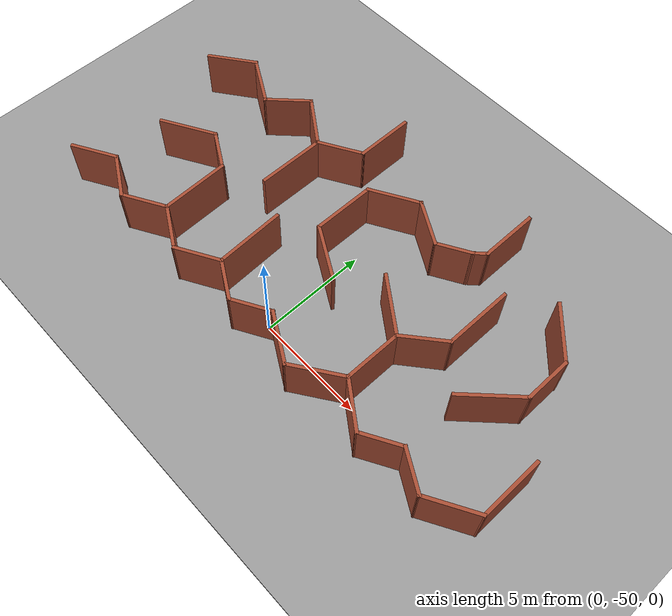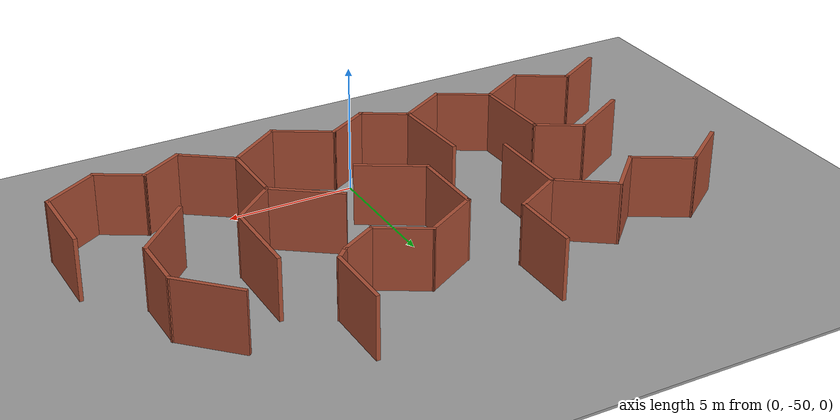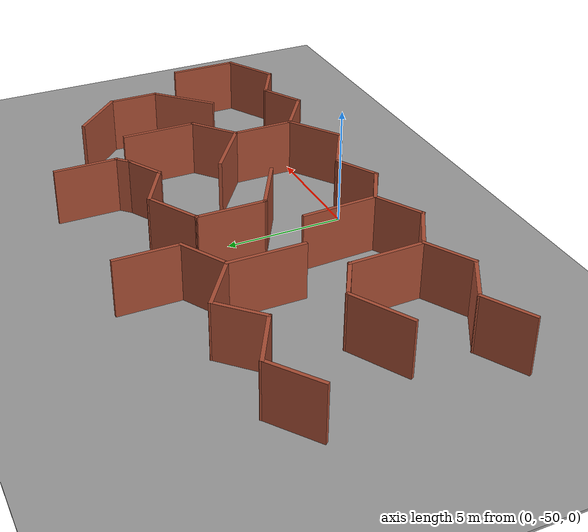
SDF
<sdf version="1.6">
 <world name="default">
  <model name="maze_rect_3">
   <pose>4e-06 -9.9e-05 0 0 -0 1.57001</pose>
   <link name="Wall_29">
    <collision name="Wall_29_Collision">
     <geometry><box><size>2.5 0.15 2.5</size></box></geometry>
     <pose>0 0 1.25 0 -0 0</pose>
    </collision>
    <visual name="Wall_29_Visual">
     <pose>0 0 1.25 0 -0 0</pose>
     <geometry><box><size>2.5 0.15 2.5</size></box></geometry>
     <material>
      <script><uri>file://media/materials/scripts/gazebo.material</uri><name>Gazebo/Bricks</name></script>
      <ambient>1 1 1 1</ambient>
     </material>
     <meta><layer>0</layer></meta>
    </visual>
    <pose>-50.6318 -10.7188 0 0 -0 2.0944</pose>
   </link>
   <link name="Wall_30">
    <collision name="Wall_30_Collision">
     <geometry><box><size>2 0.15 2.5</size></box></geometry>
     <pose>0 0 1.25 0 -0 0</pose>
    </collision>
    <visual name="Wall_30_Visual">
     <pose>0 0 1.25 0 -0 0</pose>
     <geometry><box><size>2 0.15 2.5</size></box></geometry>
     <material>
      <script><uri>file://media/materials/scripts/gazebo.material</uri><name>Gazebo/Bricks</name></script>
      <ambient>1 1 1 1</ambient>
     </material>
     <meta><layer>0</layer></meta>
    </visual>
    <pose>-50.7568 -8.90015 0 0 -0 1.0472</pose>
   </link>
   <link name="Wall_31">
    <collision name="Wall_31_Collision">
     <geometry><box><size>2 0.15 2.5</size></box></geometry>
     <pose>0 0 1.25 0 -0 0</pose>
    </collision>
    <visual name="Wall_31_Visual">
     <pose>0 0 1.25 0 -0 0</pose>
     <geometry><box><size>2 0.15 2.5</size></box></geometry>
     <material>
      <script><uri>file://media/materials/scripts/gazebo.material</uri><name>Gazebo/Bricks</name></script>
      <ambient>1 1 1 1</ambient>
     </material>
     <meta><layer>0</layer></meta>
    </visual>
    <pose>-50.7568 -7.298 0 0 -0 2.0944</pose>
   </link>
   <link name="Wall_32">
    <collision name="Wall_32_Collision">
     <geometry><box><size>2.38551 0.15 2.5</size></box></geometry>
     <pose>0 0 1.25 0 -0 0</pose>
    </collision>
    <visual name="Wall_32_Visual">
     <pose>0 0 1.25 0 -0 0</pose>
     <geometry><box><size>2.38551 0.15 2.5</size></box></geometry>
     <material>
      <script><uri>file://media/materials/scripts/gazebo.material</uri><name>Gazebo/Bricks</name></script>
      <ambient>1 1 1 1</ambient>
     </material>
     <meta><layer>0</layer></meta>
    </visual>
    <pose>-50.5693 -5.5876 0 0 -0 0.950197</pose>
   </link>
   <link name="Wall_33">
    <collision name="Wall_33_Collision">
     <geometry><box><size>2.63445 0.15 2.5</size></box></geometry>
     <pose>0 0 1.25 0 -0 0</pose>
    </collision>
    <visual name="Wall_33_Visual">
     <pose>0 0 1.25 0 -0 0</pose>
     <geometry><box><size>2.63445 0.15 2.5</size></box></geometry>
     <material>
      <script><uri>file://media/materials/scripts/gazebo.material</uri><name>Gazebo/Bricks</name></script>
      <ambient>1 1 1 1</ambient>
     </material>
     <meta><layer>0</layer></meta>
    </visual>
    <pose>-50.6318 -3.6607 0 0 -0 2.18165</pose>
   </link>
   <link name="Wall_34">
    <collision name="Wall_34_Collision">
     <geometry><box><size>2.5 0.15 2.5</size></box></geometry>
     <pose>0 0 1.25 0 -0 0</pose>
    </collision>
    <visual name="Wall_34_Visual">
     <pose>0 0 1.25 0 -0 0</pose>
     <geometry><box><size>2.5 0.15 2.5</size></box></geometry>
     <material>
      <script><uri>file://media/materials/scripts/gazebo.material</uri><name>Gazebo/Bricks</name></script>
      <ambient>1 1 1 1</ambient>
     </material>
     <meta><layer>0</layer></meta>
    </visual>
    <pose>-50.7568 -1.62553 0 0 -0 1.0472</pose>
   </link>
   <link name="Wall_35">
    <collision name="Wall_35_Collision">
     <geometry><box><size>2 0.15 2.5</size></box></geometry>
     <pose>0 0 1.25 0 -0 0</pose>
    </collision>
    <visual name="Wall_35_Visual">
     <pose>0 0 1.25 0 -0 0</pose>
     <geometry><box><size>2 0.15 2.5</size></box></geometry>
     <material>
      <script><uri>file://media/materials/scripts/gazebo.material</uri><name>Gazebo/Bricks</name></script>
      <ambient>1 1 1 1</ambient>
     </material>
     <meta><layer>0</layer></meta>
    </visual>
    <pose>-50.6318 0.193118 0 0 -0 2.0944</pose>
   </link>
   <link name="Wall_36">
    <collision name="Wall_36_Collision">
     <geometry><box><size>2 0.15 2.5</size></box></geometry>
     <pose>0 0 1.25 0 -0 0</pose>
    </collision>
    <visual name="Wall_36_Visual">
     <pose>0 0 1.25 0 -0 0</pose>
     <geometry><box><size>2 0.15 2.5</size></box></geometry>
     <material>
      <script><uri>file://media/materials/scripts/gazebo.material</uri><name>Gazebo/Bricks</name></script>
      <ambient>1 1 1 1</ambient>
     </material>
     <meta><layer>0</layer></meta>
    </visual>
    <pose>-50.6318 1.79527 0 0 -0 1.0472</pose>
   </link>
   <link name="Wall_37">
    <collision name="Wall_37_Collision">
     <geometry><box><size>2.25 0.15 2.5</size></box></geometry>
     <pose>0 0 1.25 0 -0 0</pose>
    </collision>
    <visual name="Wall_37_Visual">
     <pose>0 0 1.25 0 -0 0</pose>
     <geometry><box><size>2.25 0.15 2.5</size></box></geometry>
     <material>
      <script><uri>file://media/materials/scripts/gazebo.material</uri><name>Gazebo/Bricks</name></script>
      <ambient>1 1 1 1</ambient>
     </material>
     <meta><layer>0</layer></meta>
    </visual>
    <pose>-50.6943 3.50567 0 0 -0 2.0944</pose>
   </link>
   <link name="Wall_38">
    <collision name="Wall_38_Collision">
     <geometry><box><size>2.25 0.15 2.5</size></box></geometry>
     <pose>0 0 1.25 0 -0 0</pose>
    </collision>
    <visual name="Wall_38_Visual">
     <pose>0 0 1.25 0 -0 0</pose>
     <geometry><box><size>2.25 0.15 2.5</size></box></geometry>
     <material>
      <script><uri>file://media/materials/scripts/gazebo.material</uri><name>Gazebo/Bricks</name></script>
      <ambient>1 1 1 1</ambient>
     </material>
     <meta><layer>0</layer></meta>
    </visual>
    <pose>-50.6943 5.32432 0 0 -0 1.0472</pose>
   </link>
   <link name="Wall_39">
    <collision name="Wall_39_Collision">
     <geometry><box><size>2.25 0.15 2.5</size></box></geometry>
     <pose>0 0 1.25 0 -0 0</pose>
    </collision>
    <visual name="Wall_39_Visual">
     <pose>0 0 1.25 0 -0 0</pose>
     <geometry><box><size>2.25 0.15 2.5</size></box></geometry>
     <material>
      <script><uri>file://media/materials/scripts/gazebo.material</uri><name>Gazebo/Bricks</name></script>
      <ambient>1 1 1 1</ambient>
     </material>
     <meta><layer>0</layer></meta>
    </visual>
    <pose>-50.6943 7.14297 0 0 -0 2.0944</pose>
   </link>
   <link name="Wall_40">
    <collision name="Wall_40_Collision">
     <geometry><box><size>2.25 0.15 2.5</size></box></geometry>
     <pose>0 0 1.25 0 -0 0</pose>
    </collision>
    <visual name="Wall_40_Visual">
     <pose>0 0 1.25 0 -0 0</pose>
     <geometry><box><size>2.25 0.15 2.5</size></box></geometry>
     <material>
      <script><uri>file://media/materials/scripts/gazebo.material</uri><name>Gazebo/Bricks</name></script>
      <ambient>1 1 1 1</ambient>
     </material>
     <meta><layer>0</layer></meta>
    </visual>
    <pose>-50.6943 8.96163 0 0 -0 1.0472</pose>
   </link>
   <link name="Wall_41">
    <collision name="Wall_41_Collision">
     <geometry><box><size>2.25 0.15 2.5</size></box></geometry>
     <pose>0 0 1.25 0 -0 0</pose>
    </collision>
    <visual name="Wall_41_Visual">
     <pose>0 0 1.25 0 -0 0</pose>
     <geometry><box><size>2.25 0.15 2.5</size></box></geometry>
     <material>
      <script><uri>file://media/materials/scripts/gazebo.material</uri><name>Gazebo/Bricks</name></script>
      <ambient>1 1 1 1</ambient>
     </material>
     <meta><layer>0</layer></meta>
    </visual>
    <pose>-50.6943 10.7803 0 0 -0 2.0944</pose>
   </link>
   <link name="Wall_559">
    <collision name="Wall_559_Collision">
     <geometry><box><size>3 0.15 2.5</size></box></geometry>
     <pose>0 0 1.25 0 -0 0</pose>
    </collision>
    <visual name="Wall_559_Visual">
     <pose>0 0 1.25 0 -0 0</pose>
     <geometry><box><size>3 0.15 2.5</size></box></geometry>
     <material>
      <script><uri>file://media/materials/scripts/gazebo.material</uri><name>Gazebo/Bricks</name></script>
      <ambient>1 1 1 1</ambient>
     </material>
     <meta><layer>0</layer></meta>
    </visual>
    <pose>-46.485 -8.87773 0 0 -0 -0.785398</pose>
   </link>
   <link name="Wall_560">
    <collision name="Wall_560_Collision">
     <geometry><box><size>2.25 0.15 2.5</size></box></geometry>
     <pose>0 0 1.25 0 -0 0</pose>
    </collision>
    <visual name="Wall_560_Visual">
     <pose>0 0 1.25 0 -0 0</pose>
     <geometry><box><size>2.25 0.15 2.5</size></box></geometry>
     <material>
      <script><uri>file://media/materials/scripts/gazebo.material</uri><name>Gazebo/Bricks</name></script>
      <ambient>1 1 1 1</ambient>
     </material>
     <meta><layer>0</layer></meta>
    </visual>
    <pose>-44.4273 -9.88536 0 0 -0 0</pose>
   </link>
   <link name="Wall_561">
    <collision name="Wall_561_Collision">
     <geometry><box><size>2.75 0.15 2.5</size></box></geometry>
     <pose>0 0 1.25 0 -0 0</pose>
    </collision>
    <visual name="Wall_561_Visual">
     <pose>0 0 1.25 0 -0 0</pose>
     <geometry><box><size>2.75 0.15 2.5</size></box></geometry>
     <material>
      <script><uri>file://media/materials/scripts/gazebo.material</uri><name>Gazebo/Bricks</name></script>
      <ambient>1 1 1 1</ambient>
     </material>
     <meta><layer>0</layer></meta>
    </visual>
    <pose>-42.4581 -8.96612 0 0 -0 0.785398</pose>
   </link>
   <link name="Wall_568">
    <collision name="Wall_568_Collision">
     <geometry><box><size>2.75 0.15 2.5</size></box></geometry>
     <pose>0 0 1.25 0 -0 0</pose>
    </collision>
    <visual name="Wall_568_Visual">
     <pose>0 0 1.25 0 -0 0</pose>
     <geometry><box><size>2.75 0.15 2.5</size></box></geometry>
     <material>
      <script><uri>file://media/materials/scripts/gazebo.material</uri><name>Gazebo/Bricks</name></script>
      <ambient>1 1 1 1</ambient>
     </material>
     <meta><layer>0</layer></meta>
    </visual>
    <pose>-46.752 -0.005721 0 0 -0 1.0472</pose>
   </link>
   <link name="Wall_569">
    <collision name="Wall_569_Collision">
     <geometry><box><size>3 0.15 2.5</size></box></geometry>
     <pose>0 0 1.25 0 -0 0</pose>
    </collision>
    <visual name="Wall_569_Visual">
     <pose>0 0 1.25 0 -0 0</pose>
     <geometry><box><size>3 0.15 2.5</size></box></geometry>
     <material>
      <script><uri>file://media/materials/scripts/gazebo.material</uri><name>Gazebo/Bricks</name></script>
      <ambient>1 1 1 1</ambient>
     </material>
     <meta><layer>0</layer></meta>
    </visual>
    <pose>-44.677 1.12011 0 0 -0 0</pose>
   </link>
   <link name="Wall_570">
    <collision name="Wall_570_Collision">
     <geometry><box><size>2.5 0.15 2.5</size></box></geometry>
     <pose>0 0 1.25 0 -0 0</pose>
    </collision>
    <visual name="Wall_570_Visual">
     <pose>0 0 1.25 0 -0 0</pose>
     <geometry><box><size>2.5 0.15 2.5</size></box></geometry>
     <material>
      <script><uri>file://media/materials/scripts/gazebo.material</uri><name>Gazebo/Bricks</name></script>
      <ambient>1 1 1 1</ambient>
     </material>
     <meta><layer>0</layer></meta>
    </visual>
    <pose>-42.6645 0.102532 0 0 -0 -1.0472</pose>
   </link>
   <link name="Wall_571">
    <collision name="Wall_571_Collision">
     <geometry><box><size>2.25 0.15 2.5</size></box></geometry>
     <pose>0 0 1.25 0 -0 0</pose>
    </collision>
    <visual name="Wall_571_Visual">
     <pose>0 0 1.25 0 -0 0</pose>
     <geometry><box><size>2.25 0.15 2.5</size></box></geometry>
     <material>
      <script><uri>file://media/materials/scripts/gazebo.material</uri><name>Gazebo/Bricks</name></script>
      <ambient>1 1 1 1</ambient>
     </material>
     <meta><layer>0</layer></meta>
    </visual>
    <pose>-42.602 -1.82437 0 0 -0 -2.0944</pose>
   </link>
   <link name="Wall_572">
    <collision name="Wall_572_Collision">
     <geometry><box><size>1.75 0.15 2.5</size></box></geometry>
     <pose>0 0 1.25 0 -0 0</pose>
    </collision>
    <visual name="Wall_572_Visual">
     <pose>0 0 1.25 0 -0 0</pose>
     <geometry><box><size>1.75 0.15 2.5</size></box></geometry>
     <material>
      <script><uri>file://media/materials/scripts/gazebo.material</uri><name>Gazebo/Bricks</name></script>
      <ambient>1 1 1 1</ambient>
     </material>
     <meta><layer>0</layer></meta>
    </visual>
    <pose>-42.727 -3.42652 0 0 -0 -1.0472</pose>
   </link>
   <link name="Wall_573">
    <collision name="Wall_573_Collision">
     <geometry><box><size>0.75 0.15 2.5</size></box></geometry>
     <pose>0 0 1.25 0 -0 0</pose>
    </collision>
    <visual name="Wall_573_Visual">
     <pose>0 0 1.25 0 -0 0</pose>
     <geometry><box><size>0.75 0.15 2.5</size></box></geometry>
     <material>
      <script><uri>file://media/materials/scripts/gazebo.material</uri><name>Gazebo/Bricks</name></script>
      <ambient>1 1 1 1</ambient>
     </material>
     <meta><layer>0</layer></meta>
    </visual>
    <pose>-42.1148 -4.33147 0 0 -0 -0.785398</pose>
   </link>
   <link name="Wall_574">
    <collision name="Wall_574_Collision">
     <geometry><box><size>2.75 0.15 2.5</size></box></geometry>
     <pose>0 0 1.25 0 -0 0</pose>
    </collision>
    <visual name="Wall_574_Visual">
     <pose>0 0 1.25 0 -0 0</pose>
     <geometry><box><size>2.75 0.15 2.5</size></box></geometry>
     <material>
      <script><uri>file://media/materials/scripts/gazebo.material</uri><name>Gazebo/Bricks</name></script>
      <ambient>1 1 1 1</ambient>
     </material>
     <meta><layer>0</layer></meta>
    </visual>
    <pose>-40.6027 -4.54361 0 0 -0 0</pose>
   </link>
   <link name="Wall_578">
    <collision name="Wall_578_Collision">
     <geometry><box><size>3.25 0.15 2.5</size></box></geometry>
     <pose>0 0 1.25 0 -0 0</pose>
    </collision>
    <visual name="Wall_578_Visual">
     <pose>0 0 1.25 0 -0 0</pose>
     <geometry><box><size>3.25 0.15 2.5</size></box></geometry>
     <material>
      <script><uri>file://media/materials/scripts/gazebo.material</uri><name>Gazebo/Bricks</name></script>
      <ambient>1 1 1 1</ambient>
     </material>
     <meta><layer>0</layer></meta>
    </visual>
    <pose>-44.4008 -6.3002 0 0 -0 3.14159</pose>
   </link>
   <link name="Wall_579">
    <collision name="Wall_579_Collision">
     <geometry><box><size>2.27211 0.15 2.5</size></box></geometry>
     <pose>0 0 1.25 0 -0 0</pose>
    </collision>
    <visual name="Wall_579_Visual">
     <pose>0 0 1.25 0 -0 0</pose>
     <geometry><box><size>2.27211 0.15 2.5</size></box></geometry>
     <material>
      <script><uri>file://media/materials/scripts/gazebo.material</uri><name>Gazebo/Bricks</name></script>
      <ambient>1 1 1 1</ambient>
     </material>
     <meta><layer>0</layer></meta>
    </visual>
    <pose>-46.635 -5.48924 0 0 -0 2.27164</pose>
   </link>
   <link name="Wall_580">
    <collision name="Wall_580_Collision">
     <geometry><box><size>2.75 0.15 2.5</size></box></geometry>
     <pose>0 0 1.25 0 -0 0</pose>
    </collision>
    <visual name="Wall_580_Visual">
     <pose>0 0 1.25 0 -0 0</pose>
     <geometry><box><size>2.75 0.15 2.5</size></box></geometry>
     <material>
      <script><uri>file://media/materials/scripts/gazebo.material</uri><name>Gazebo/Bricks</name></script>
      <ambient>1 1 1 1</ambient>
     </material>
     <meta><layer>0</layer></meta>
    </visual>
    <pose>-48.6193 -4.67828 0 0 -0 3.14159</pose>
   </link>
   <link name="Wall_582">
    <collision name="Wall_582_Collision">
     <geometry><box><size>2.91824 0.15 2.5</size></box></geometry>
     <pose>0 0 1.25 0 -0 0</pose>
    </collision>
    <visual name="Wall_582_Visual">
     <pose>0 0 1.25 0 -0 0</pose>
     <geometry><box><size>2.91824 0.15 2.5</size></box></geometry>
     <material>
      <script><uri>file://media/materials/scripts/gazebo.material</uri><name>Gazebo/Bricks</name></script>
      <ambient>1 1 1 1</ambient>
     </material>
     <meta><layer>0</layer></meta>
    </visual>
    <pose>-46.5071 -3.55749 0 0 -0 -2.19787</pose>
   </link>
   <link name="Wall_588">
    <collision name="Wall_588_Collision">
     <geometry><box><size>3 0.15 2.5</size></box></geometry>
     <pose>0 0 1.25 0 -0 0</pose>
    </collision>
    <visual name="Wall_588_Visual">
     <pose>0 0 1.25 0 -0 0</pose>
     <geometry><box><size>3 0.15 2.5</size></box></geometry>
     <material>
      <script><uri>file://media/materials/scripts/gazebo.material</uri><name>Gazebo/Bricks</name></script>
      <ambient>1 1 1 1</ambient>
     </material>
     <meta><layer>0</layer></meta>
    </visual>
    <pose>-48.6193 -11.7364 0 0 -0 3.14159</pose>
   </link>
   <link name="Wall_595">
    <collision name="Wall_595_Collision">
     <geometry><box><size>3.29802 0.15 2.5</size></box></geometry>
     <pose>0 0 1.25 0 -0 0</pose>
    </collision>
    <visual name="Wall_595_Visual">
     <pose>0 0 1.25 0 -0 0</pose>
     <geometry><box><size>3.29802 0.15 2.5</size></box></geometry>
     <material>
      <script><uri>file://media/materials/scripts/gazebo.material</uri><name>Gazebo/Bricks</name></script>
      <ambient>1 1 1 1</ambient>
     </material>
     <meta><layer>0</layer></meta>
    </visual>
    <pose>-48.5968 2.66538 0 0 -0 -3.09771</pose>
   </link>
   <link name="Wall_597">
    <collision name="Wall_597_Collision">
     <geometry><box><size>2.75 0.15 2.5</size></box></geometry>
     <pose>0 0 1.25 0 -0 0</pose>
    </collision>
    <visual name="Wall_597_Visual">
     <pose>0 0 1.25 0 -0 0</pose>
     <geometry><box><size>2.75 0.15 2.5</size></box></geometry>
     <material>
      <script><uri>file://media/materials/scripts/gazebo.material</uri><name>Gazebo/Bricks</name></script>
      <ambient>1 1 1 1</ambient>
     </material>
     <meta><layer>0</layer></meta>
    </visual>
    <pose>-46.7977 9.04905 0 0 -0 -1.0472</pose>
   </link>
   <link name="Wall_598">
    <collision name="Wall_598_Collision">
     <geometry><box><size>2 0.15 2.5</size></box></geometry>
     <pose>0 0 1.25 0 -0 0</pose>
    </collision>
    <visual name="Wall_598_Visual">
     <pose>0 0 1.25 0 -0 0</pose>
     <geometry><box><size>2 0.15 2.5</size></box></geometry>
     <material>
      <script><uri>file://media/materials/scripts/gazebo.material</uri><name>Gazebo/Bricks</name></script>
      <ambient>1 1 1 1</ambient>
     </material>
     <meta><layer>0</layer></meta>
    </visual>
    <pose>-46.6102 7.12214 0 0 -0 -2.0944</pose>
   </link>
   <link name="Wall_599">
    <collision name="Wall_599_Collision">
     <geometry><box><size>3.24778 0.15 2.5</size></box></geometry>
     <pose>0 0 1.25 0 -0 0</pose>
    </collision>
    <visual name="Wall_599_Visual">
     <pose>0 0 1.25 0 -0 0</pose>
     <geometry><box><size>3.24778 0.15 2.5</size></box></geometry>
     <material>
      <script><uri>file://media/materials/scripts/gazebo.material</uri><name>Gazebo/Bricks</name></script>
      <ambient>1 1 1 1</ambient>
     </material>
     <meta><layer>0</layer></meta>
    </visual>
    <pose>-48.621 6.27736 0 0 -0 -3.11337</pose>
   </link>
   <link name="Wall_639">
    <collision name="Wall_639_Collision">
     <geometry><box><size>3.25 0.15 2.5</size></box></geometry>
     <pose>0 0 1.25 0 -0 0</pose>
    </collision>
    <visual name="Wall_639_Visual">
     <pose>0 0 1.25 0 -0 0</pose>
     <geometry><box><size>3.25 0.15 2.5</size></box></geometry>
     <material>
      <script><uri>file://media/materials/scripts/gazebo.material</uri><name>Gazebo/Bricks</name></script>
      <ambient>1 1 1 1</ambient>
     </material>
     <meta><layer>0</layer></meta>
    </visual>
    <pose>-44.6499 4.48459 0 0 -0 0</pose>
   </link>
   <link name="Wall_640">
    <collision name="Wall_640_Collision">
     <geometry><box><size>2.25 0.15 2.5</size></box></geometry>
     <pose>0 0 1.25 0 -0 0</pose>
    </collision>
    <visual name="Wall_640_Visual">
     <pose>0 0 1.25 0 -0 0</pose>
     <geometry><box><size>2.25 0.15 2.5</size></box></geometry>
     <material>
      <script><uri>file://media/materials/scripts/gazebo.material</uri><name>Gazebo/Bricks</name></script>
      <ambient>1 1 1 1</ambient>
     </material>
     <meta><layer>0</layer></meta>
    </visual>
    <pose>-42.5749 3.57526 0 0 -0 -1.0472</pose>
   </link>
   <link name="Wall_641">
    <collision name="Wall_641_Collision">
     <geometry><box><size>2.75 0.15 2.5</size></box></geometry>
     <pose>0 0 1.25 0 -0 0</pose>
    </collision>
    <visual name="Wall_641_Visual">
     <pose>0 0 1.25 0 -0 0</pose>
     <geometry><box><size>2.75 0.15 2.5</size></box></geometry>
     <material>
      <script><uri>file://media/materials/scripts/gazebo.material</uri><name>Gazebo/Bricks</name></script>
      <ambient>1 1 1 1</ambient>
     </material>
     <meta><layer>0</layer></meta>
    </visual>
    <pose>-40.7499 2.66594 0 0 -0 0</pose>
   </link>
   <link name="Wall_656">
    <collision name="Wall_656_Collision">
     <geometry><box><size>2.41594 0.15 2.5</size></box></geometry>
     <pose>0 0 1.25 0 -0 0</pose>
    </collision>
    <visual name="Wall_656_Visual">
     <pose>0 0 1.25 0 -0 0</pose>
     <geometry><box><size>2.41594 0.15 2.5</size></box></geometry>
     <material>
      <script><uri>file://media/materials/scripts/gazebo.material</uri><name>Gazebo/Bricks</name></script>
      <ambient>1 1 1 1</ambient>
     </material>
     <meta><layer>0</layer></meta>
    </visual>
    <pose>-42.6786 10.8948 0 0 -0 -0.931586</pose>
   </link>
   <link name="Wall_657">
    <collision name="Wall_657_Collision">
     <geometry><box><size>2.5 0.15 2.5</size></box></geometry>
     <pose>0 0 1.25 0 -0 0</pose>
    </collision>
    <visual name="Wall_657_Visual">
     <pose>0 0 1.25 0 -0 0</pose>
     <geometry><box><size>2.5 0.15 2.5</size></box></geometry>
     <material>
      <script><uri>file://media/materials/scripts/gazebo.material</uri><name>Gazebo/Bricks</name></script>
      <ambient>1 1 1 1</ambient>
     </material>
     <meta><layer>0</layer></meta>
    </visual>
    <pose>-42.5902 8.96789 0 0 -0 -2.0944</pose>
   </link>
   <link name="Wall_658">
    <collision name="Wall_658_Collision">
     <geometry><box><size>2.25 0.15 2.5</size></box></geometry>
     <pose>0 0 1.25 0 -0 0</pose>
    </collision>
    <visual name="Wall_658_Visual">
     <pose>0 0 1.25 0 -0 0</pose>
     <geometry><box><size>2.25 0.15 2.5</size></box></geometry>
     <material>
      <script><uri>file://media/materials/scripts/gazebo.material</uri><name>Gazebo/Bricks</name></script>
      <ambient>1 1 1 1</ambient>
     </material>
     <meta><layer>0</layer></meta>
    </visual>
    <pose>-42.4353 7.20785 0 0 -0 -0.785398</pose>
   </link>
   <link name="Wall_659">
    <collision name="Wall_659_Collision">
     <geometry><box><size>2.57972 0.15 2.5</size></box></geometry>
     <pose>0 0 1.25 0 -0 0</pose>
    </collision>
    <visual name="Wall_659_Visual">
     <pose>0 0 1.25 0 -0 0</pose>
     <geometry><box><size>2.57972 0.15 2.5</size></box></geometry>
     <material>
      <script><uri>file://media/materials/scripts/gazebo.material</uri><name>Gazebo/Bricks</name></script>
      <ambient>1 1 1 1</ambient>
     </material>
     <meta><layer>0</layer></meta>
    </visual>
    <pose>-42.3964 5.47499 0 0 -0 -2.18845</pose>
   </link>
   <static>1</static>
  </model>
  <model name="ground_plane_6">
   <static>1</static>
   <link name="link">
    <collision name="collision">
     <geometry><plane><normal>0 0 1</normal><size>100 100</size></plane></geometry>
     <surface><friction><ode><mu>100</mu><mu2>50</mu2></ode></friction></surface>
    </collision>
    <visual name="visual">
     <cast_shadows>0</cast_shadows>
     <geometry><plane><normal>0 0 1</normal><size>100 100</size></plane></geometry>
     <material>
      <script><uri>file://media/materials/scripts/gazebo.material</uri><name>Gazebo/Grey</name></script>
     </material>
    </visual>
   </link>
   <pose>5.34507 -42.1376 0 0 -0 0</pose>
  </model>
  <model name="ground_plane_7">
   <static>1</static>
   <link name="link">
    <collision name="collision">
     <geometry><plane><normal>0 0 1</normal><size>100 100</size></plane></geometry>
     <surface><friction><ode><mu>100</mu><mu2>50</mu2></ode></friction></surface>
    </collision>
    <visual name="visual">
     <cast_shadows>0</cast_shadows>
     <geometry><plane><normal>0 0 1</normal><size>100 100</size></plane></geometry>
     <material>
      <script><uri>file://media/materials/scripts/gazebo.material</uri><name>Gazebo/Grey</name></script>
     </material>
    </visual>
   </link>
   <pose>-2.53402 -50.7987 0 0 -0 0</pose>
  </model>
  <model name="ground_plane">
   <static>1</static>
   <link name="link">
    <collision name="collision">
     <geometry><plane><normal>0 0 1</normal><size>100 100</size></plane></geometry>
     <surface>
      <contact><collide_bitmask>65535</collide_bitmask></contact>
      <friction><ode><mu>100</mu><mu2>50</mu2></ode></friction>
     </surface>
    </collision>
    <visual name="visual">
     <cast_shadows>0</cast_shadows>
     <geometry><plane><normal>0 0 1</normal><size>100 100</size></plane></geometry>
     <material>
      <script><uri>file://media/materials/scripts/gazebo.material</uri><name>Gazebo/Grey</name></script>
     </material>
    </visual>
   </link>
   <pose>9.31394 52.073 0 0 -0 0</pose>
  </model>
 </world>
</sdf>
